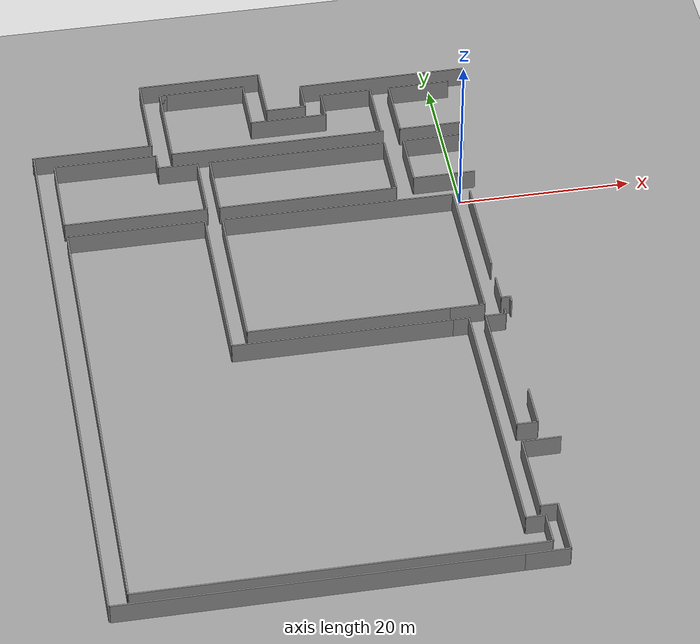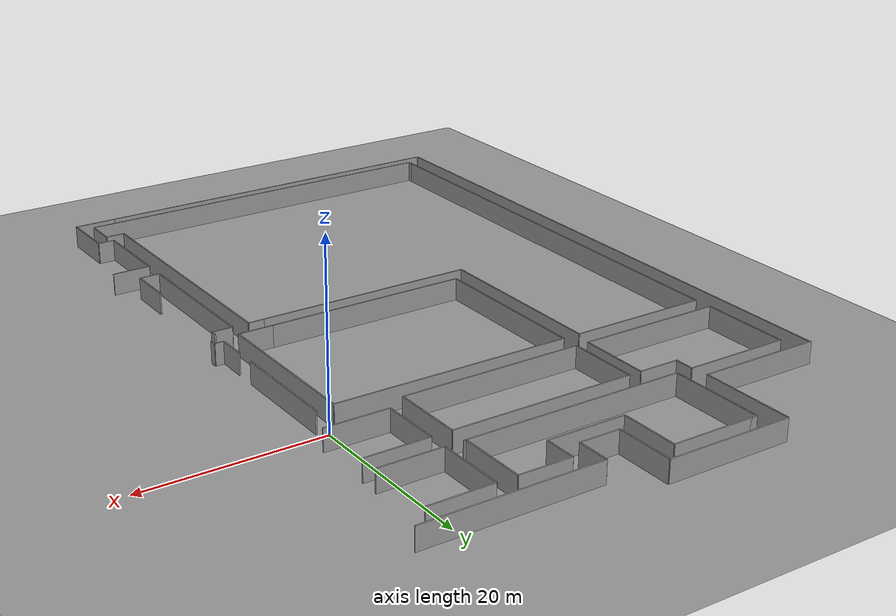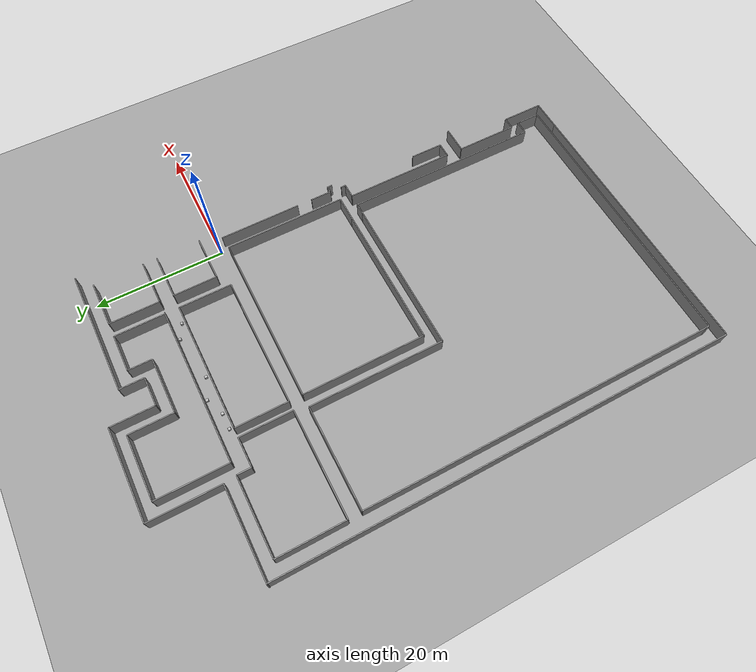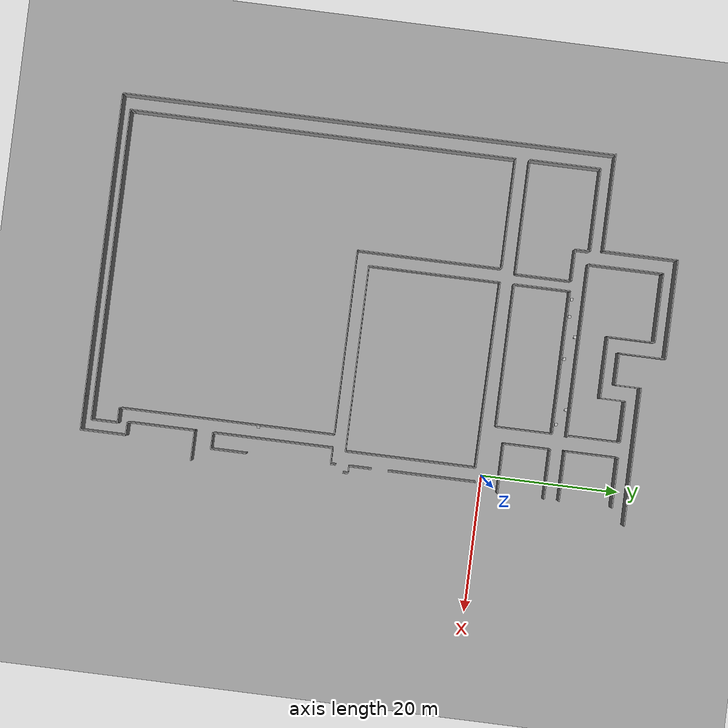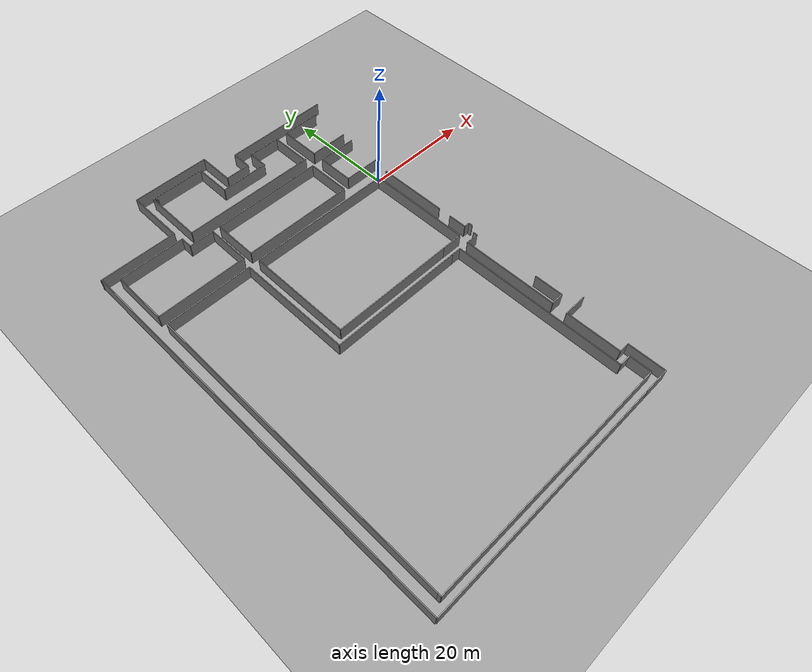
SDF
<sdf version="1.6">
 <world name="default">
  <model name="ground_plane_0">
   <static>1</static>
   <link name="link">
    <collision name="collision">
     <geometry><plane><normal>0 0 1</normal><size>100 100</size></plane></geometry>
     <surface><friction><ode><mu>100</mu><mu2>50</mu2></ode></friction></surface>
    </collision>
    <visual name="visual">
     <cast_shadows>0</cast_shadows>
     <geometry><plane><normal>0 0 1</normal><size>100 100</size></plane></geometry>
     <material>
      <script><uri>file://media/materials/scripts/gazebo.material</uri><name>Gazebo/Grey</name></script>
     </material>
    </visual>
    <velocity_decay><linear>0</linear><angular>0</angular></velocity_decay>
   </link>
   <pose>0.497681 0 0 0 -0 0</pose>
  </model>
  <model name="Wean4Complete">
   <pose>-5 0 0 0 -0 0</pose>
   <static>1</static>
   <link name="Wall_0">
    <collision name="Wall_0_Collision">
     <geometry><box><size>2.162 0.15 2.5</size></box></geometry>
     <pose>0 0 1.25 0 -0 0</pose>
    </collision>
    <visual name="Wall_0_Visual">
     <pose>0 0 1.25 0 -0 0</pose>
     <geometry><box><size>2.162 0.15 2.5</size></box></geometry>
     <material>
      <script><uri>file://media/materials/scripts/gazebo.material</uri><name>Gazebo/Grey</name></script>
      <ambient>1 1 1 1</ambient>
     </material>
    </visual>
    <pose>-29.104 10.27 0 0 0 1.57079632679</pose>
   </link>
   <link name="Wall_1">
    <collision name="Wall_1_Collision">
     <geometry><box><size>8.108 0.15 2.5</size></box></geometry>
     <pose>0 0 1.25 0 -0 0</pose>
    </collision>
    <visual name="Wall_1_Visual">
     <pose>0 0 1.25 0 -0 0</pose>
     <geometry><box><size>8.108 0.15 2.5</size></box></geometry>
     <material>
      <script><uri>file://media/materials/scripts/gazebo.material</uri><name>Gazebo/Grey</name></script>
      <ambient>1 1 1 1</ambient>
     </material>
    </visual>
    <pose>-24.509 5.135 0 0 0 1.57079632679</pose>
   </link>
   <link name="Wall_2">
    <collision name="Wall_2_Collision">
     <geometry><box><size>16.541 0.15 2.5</size></box></geometry>
     <pose>0 0 1.25 0 -0 0</pose>
    </collision>
    <visual name="Wall_2_Visual">
     <pose>0 0 1.25 0 -0 0</pose>
     <geometry><box><size>16.541 0.15 2.5</size></box></geometry>
     <material>
      <script><uri>file://media/materials/scripts/gazebo.material</uri><name>Gazebo/Grey</name></script>
      <ambient>1 1 1 1</ambient>
     </material>
    </visual>
    <pose>-32.7795 1.081 0 0 0 0.0</pose>
   </link>
   <link name="Wall_3">
    <collision name="Wall_3_Collision">
     <geometry><box><size>4.595 0.15 2.5</size></box></geometry>
     <pose>0 0 1.25 0 -0 0</pose>
    </collision>
    <visual name="Wall_3_Visual">
     <pose>0 0 1.25 0 -0 0</pose>
     <geometry><box><size>4.595 0.15 2.5</size></box></geometry>
     <material>
      <script><uri>file://media/materials/scripts/gazebo.material</uri><name>Gazebo/Grey</name></script>
      <ambient>1 1 1 1</ambient>
     </material>
    </visual>
    <pose>-26.8065 9.189 0 0 0 0.0</pose>
   </link>
   <link name="Wall_4">
    <collision name="Wall_4_Collision">
     <geometry><box><size>8.108 0.15 2.5</size></box></geometry>
     <pose>0 0 1.25 0 -0 0</pose>
    </collision>
    <visual name="Wall_4_Visual">
     <pose>0 0 1.25 0 -0 0</pose>
     <geometry><box><size>8.108 0.15 2.5</size></box></geometry>
     <material>
      <script><uri>file://media/materials/scripts/gazebo.material</uri><name>Gazebo/Grey</name></script>
      <ambient>1 1 1 1</ambient>
     </material>
    </visual>
    <pose>-23.05 5.135 0 0 0 1.57079632679</pose>
   </link>
   <link name="Wall_5">
    <collision name="Wall_5_Collision">
     <geometry><box><size>20.703 0.15 2.5</size></box></geometry>
     <pose>0 0 1.25 0 -0 0</pose>
    </collision>
    <visual name="Wall_5_Visual">
     <pose>0 0 1.25 0 -0 0</pose>
     <geometry><box><size>20.703 0.15 2.5</size></box></geometry>
     <material>
      <script><uri>file://media/materials/scripts/gazebo.material</uri><name>Gazebo/Grey</name></script>
      <ambient>1 1 1 1</ambient>
     </material>
    </visual>
    <pose>-12.6985 1.081 0 0 0 0.0</pose>
   </link>
   <link name="Wall_6">
    <collision name="Wall_6_Collision">
     <geometry><box><size>8.108 0.15 2.5</size></box></geometry>
     <pose>0 0 1.25 0 -0 0</pose>
    </collision>
    <visual name="Wall_6_Visual">
     <pose>0 0 1.25 0 -0 0</pose>
     <geometry><box><size>8.108 0.15 2.5</size></box></geometry>
     <material>
      <script><uri>file://media/materials/scripts/gazebo.material</uri><name>Gazebo/Grey</name></script>
      <ambient>1 1 1 1</ambient>
     </material>
    </visual>
    <pose>-2.347 5.135 0 0 0 1.57079632679</pose>
   </link>
   <link name="Wall_7">
    <collision name="Wall_7_Collision">
     <geometry><box><size>20.703 0.15 2.5</size></box></geometry>
     <pose>0 0 1.25 0 -0 0</pose>
    </collision>
    <visual name="Wall_7_Visual">
     <pose>0 0 1.25 0 -0 0</pose>
     <geometry><box><size>20.703 0.15 2.5</size></box></geometry>
     <material>
      <script><uri>file://media/materials/scripts/gazebo.material</uri><name>Gazebo/Grey</name></script>
      <ambient>1 1 1 1</ambient>
     </material>
    </visual>
    <pose>-12.6985 9.189 0 0 0 0.0</pose>
   </link>
   <link name="Wall_8">
    <collision name="Wall_8_Collision">
     <geometry><box><size>25.135 0.15 2.5</size></box></geometry>
     <pose>0 0 1.25 0 -0 0</pose>
    </collision>
    <visual name="Wall_8_Visual">
     <pose>0 0 1.25 0 -0 0</pose>
     <geometry><box><size>25.135 0.15 2.5</size></box></geometry>
     <material>
      <script><uri>file://media/materials/scripts/gazebo.material</uri><name>Gazebo/Grey</name></script>
      <ambient>1 1 1 1</ambient>
     </material>
    </visual>
    <pose>-14.6445 11.351 0 0 0 0.0</pose>
   </link>
   <link name="Wall_9">
    <collision name="Wall_9_Collision">
     <geometry><box><size>7.676 0.15 2.5</size></box></geometry>
     <pose>0 0 1.25 0 -0 0</pose>
    </collision>
    <visual name="Wall_9_Visual">
     <pose>0 0 1.25 0 -0 0</pose>
     <geometry><box><size>7.676 0.15 2.5</size></box></geometry>
     <material>
      <script><uri>file://media/materials/scripts/gazebo.material</uri><name>Gazebo/Grey</name></script>
      <ambient>1 1 1 1</ambient>
     </material>
    </visual>
    <pose>-2.347 15.189 0 0 0 1.57079632679</pose>
   </link>
   <link name="Wall_10">
    <collision name="Wall_10_Collision">
     <geometry><box><size>5.946 0.15 2.5</size></box></geometry>
     <pose>0 0 1.25 0 -0 0</pose>
    </collision>
    <visual name="Wall_10_Visual">
     <pose>0 0 1.25 0 -0 0</pose>
     <geometry><box><size>5.946 0.15 2.5</size></box></geometry>
     <material>
      <script><uri>file://media/materials/scripts/gazebo.material</uri><name>Gazebo/Grey</name></script>
      <ambient>1 1 1 1</ambient>
     </material>
    </visual>
    <pose>-5.32 19.027 0 0 0 0.0</pose>
   </link>
   <link name="Wall_11">
    <collision name="Wall_11_Collision">
     <geometry><box><size>3.622 0.15 2.5</size></box></geometry>
     <pose>0 0 1.25 0 -0 0</pose>
    </collision>
    <visual name="Wall_11_Visual">
     <pose>0 0 1.25 0 -0 0</pose>
     <geometry><box><size>3.622 0.15 2.5</size></box></geometry>
     <material>
      <script><uri>file://media/materials/scripts/gazebo.material</uri><name>Gazebo/Grey</name></script>
      <ambient>1 1 1 1</ambient>
     </material>
    </visual>
    <pose>-8.293 17.216 0 0 0 1.57079632679</pose>
   </link>
   <link name="Wall_12">
    <collision name="Wall_12_Collision">
     <geometry><box><size>8.919 0.15 2.5</size></box></geometry>
     <pose>0 0 1.25 0 -0 0</pose>
    </collision>
    <visual name="Wall_12_Visual">
     <pose>0 0 1.25 0 -0 0</pose>
     <geometry><box><size>8.919 0.15 2.5</size></box></geometry>
     <material>
      <script><uri>file://media/materials/scripts/gazebo.material</uri><name>Gazebo/Grey</name></script>
      <ambient>1 1 1 1</ambient>
     </material>
    </visual>
    <pose>-12.7525 15.405 0 0 0 0.0</pose>
   </link>
   <link name="Wall_13">
    <collision name="Wall_13_Collision">
     <geometry><box><size>6.757 0.15 2.5</size></box></geometry>
     <pose>0 0 1.25 0 -0 0</pose>
    </collision>
    <visual name="Wall_13_Visual">
     <pose>0 0 1.25 0 -0 0</pose>
     <geometry><box><size>6.757 0.15 2.5</size></box></geometry>
     <material>
      <script><uri>file://media/materials/scripts/gazebo.material</uri><name>Gazebo/Grey</name></script>
      <ambient>1 1 1 1</ambient>
     </material>
    </visual>
    <pose>-17.212 18.7835 0 0 0 1.57079632679</pose>
   </link>
   <link name="Wall_14">
    <collision name="Wall_14_Collision">
     <geometry><box><size>9.838 0.15 2.5</size></box></geometry>
     <pose>0 0 1.25 0 -0 0</pose>
    </collision>
    <visual name="Wall_14_Visual">
     <pose>0 0 1.25 0 -0 0</pose>
     <geometry><box><size>9.838 0.15 2.5</size></box></geometry>
     <material>
      <script><uri>file://media/materials/scripts/gazebo.material</uri><name>Gazebo/Grey</name></script>
      <ambient>1 1 1 1</ambient>
     </material>
    </visual>
    <pose>-22.131 22.162 0 0 0 0.0</pose>
   </link>
   <link name="Wall_15">
    <collision name="Wall_15_Collision">
     <geometry><box><size>10.811 0.15 2.5</size></box></geometry>
     <pose>0 0 1.25 0 -0 0</pose>
    </collision>
    <visual name="Wall_15_Visual">
     <pose>0 0 1.25 0 -0 0</pose>
     <geometry><box><size>10.811 0.15 2.5</size></box></geometry>
     <material>
      <script><uri>file://media/materials/scripts/gazebo.material</uri><name>Gazebo/Grey</name></script>
      <ambient>1 1 1 1</ambient>
     </material>
    </visual>
    <pose>-27.212 16.7565 0 0 0 1.57079632679</pose>
   </link>
   <link name="Wall_16">
    <collision name="Wall_16_Collision">
     <geometry><box><size>0.811 0.15 2.5</size></box></geometry>
     <pose>0 0 1.25 0 -0 0</pose>
    </collision>
    <visual name="Wall_16_Visual">
     <pose>0 0 1.25 0 -0 0</pose>
     <geometry><box><size>0.811 0.15 2.5</size></box></geometry>
     <material>
      <script><uri>file://media/materials/scripts/gazebo.material</uri><name>Gazebo/Grey</name></script>
      <ambient>1 1 1 1</ambient>
     </material>
    </visual>
    <pose>-26.8065 22.162 0 0 0 0.0</pose>
   </link>
   <link name="Wall_17">
    <collision name="Wall_17_Collision">
     <geometry><box><size>11.946 0.15 2.5</size></box></geometry>
     <pose>0 0 1.25 0 -0 0</pose>
    </collision>
    <visual name="Wall_17_Visual">
     <pose>0 0 1.25 0 -0 0</pose>
     <geometry><box><size>11.946 0.15 2.5</size></box></geometry>
     <material>
      <script><uri>file://media/materials/scripts/gazebo.material</uri><name>Gazebo/Grey</name></script>
      <ambient>1 1 1 1</ambient>
     </material>
    </visual>
    <pose>-35.077 11.351 0 0 0 0.0</pose>
   </link>
   <link name="Wall_18">
    <collision name="Wall_18_Collision">
     <geometry><box><size>10.27 0.15 2.5</size></box></geometry>
     <pose>0 0 1.25 0 -0 0</pose>
    </collision>
    <visual name="Wall_18_Visual">
     <pose>0 0 1.25 0 -0 0</pose>
     <geometry><box><size>10.27 0.15 2.5</size></box></geometry>
     <material>
      <script><uri>file://media/materials/scripts/gazebo.material</uri><name>Gazebo/Grey</name></script>
      <ambient>1 1 1 1</ambient>
     </material>
    </visual>
    <pose>-41.05 6.216 0 0 0 1.57079632679</pose>
   </link>
   <link name="Wall_19">
    <collision name="Wall_19_Collision">
     <geometry><box><size>10.757 0.15 2.5</size></box></geometry>
     <pose>0 0 1.25 0 -0 0</pose>
    </collision>
    <visual name="Wall_19_Visual">
     <pose>0 0 1.25 0 -0 0</pose>
     <geometry><box><size>10.757 0.15 2.5</size></box></geometry>
     <material>
      <script><uri>file://media/materials/scripts/gazebo.material</uri><name>Gazebo/Grey</name></script>
      <ambient>1 1 1 1</ambient>
     </material>
    </visual>
    <pose>-29.374 18.6215 0 0 0 1.57079632679</pose>
   </link>
   <link name="Wall_20">
    <collision name="Wall_20_Collision">
     <geometry><box><size>14.324 0.15 2.5</size></box></geometry>
     <pose>0 0 1.25 0 -0 0</pose>
    </collision>
    <visual name="Wall_20_Visual">
     <pose>0 0 1.25 0 -0 0</pose>
     <geometry><box><size>14.324 0.15 2.5</size></box></geometry>
     <material>
      <script><uri>file://media/materials/scripts/gazebo.material</uri><name>Gazebo/Grey</name></script>
      <ambient>1 1 1 1</ambient>
     </material>
    </visual>
    <pose>-22.212 24.0 0 0 0 0.0</pose>
   </link>
   <link name="Wall_21">
    <collision name="Wall_21_Collision">
     <geometry><box><size>6.703 0.15 2.5</size></box></geometry>
     <pose>0 0 1.25 0 -0 0</pose>
    </collision>
    <visual name="Wall_21_Visual">
     <pose>0 0 1.25 0 -0 0</pose>
     <geometry><box><size>6.703 0.15 2.5</size></box></geometry>
     <material>
      <script><uri>file://media/materials/scripts/gazebo.material</uri><name>Gazebo/Grey</name></script>
      <ambient>1 1 1 1</ambient>
     </material>
    </visual>
    <pose>-15.05 20.6485 0 0 0 1.57079632679</pose>
   </link>
   <link name="Wall_22">
    <collision name="Wall_22_Collision">
     <geometry><box><size>4.595 0.15 2.5</size></box></geometry>
     <pose>0 0 1.25 0 -0 0</pose>
    </collision>
    <visual name="Wall_22_Visual">
     <pose>0 0 1.25 0 -0 0</pose>
     <geometry><box><size>4.595 0.15 2.5</size></box></geometry>
     <material>
      <script><uri>file://media/materials/scripts/gazebo.material</uri><name>Gazebo/Grey</name></script>
      <ambient>1 1 1 1</ambient>
     </material>
    </visual>
    <pose>-12.7525 17.297 0 0 0 0.0</pose>
   </link>
   <link name="Wall_23">
    <collision name="Wall_23_Collision">
     <geometry><box><size>3.73 0.15 2.5</size></box></geometry>
     <pose>0 0 1.25 0 -0 0</pose>
    </collision>
    <visual name="Wall_23_Visual">
     <pose>0 0 1.25 0 -0 0</pose>
     <geometry><box><size>3.73 0.15 2.5</size></box></geometry>
     <material>
      <script><uri>file://media/materials/scripts/gazebo.material</uri><name>Gazebo/Grey</name></script>
      <ambient>1 1 1 1</ambient>
     </material>
    </visual>
    <pose>-10.455 19.162 0 0 0 1.57079632679</pose>
   </link>
   <link name="Wall_24">
    <collision name="Wall_24_Collision">
     <geometry><box><size>20.0000728999 0.15 2.5</size></box></geometry>
     <pose>0 0 1.25 0 -0 0</pose>
    </collision>
    <visual name="Wall_24_Visual">
     <pose>0 0 1.25 0 -0 0</pose>
     <geometry><box><size>20.0000728999 0.15 2.5</size></box></geometry>
     <material>
      <script><uri>file://media/materials/scripts/gazebo.material</uri><name>Gazebo/Grey</name></script>
      <ambient>1 1 1 1</ambient>
     </material>
    </visual>
    <pose>-0.455 21.054 0 0 0 0.00269999343903</pose>
   </link>
   <link name="Wall_25">
    <collision name="Wall_25_Collision">
     <geometry><box><size>7.676 0.15 2.5</size></box></geometry>
     <pose>0 0 1.25 0 -0 0</pose>
    </collision>
    <visual name="Wall_25_Visual">
     <pose>0 0 1.25 0 -0 0</pose>
     <geometry><box><size>7.676 0.15 2.5</size></box></geometry>
     <material>
      <script><uri>file://media/materials/scripts/gazebo.material</uri><name>Gazebo/Grey</name></script>
      <ambient>1 1 1 1</ambient>
     </material>
    </visual>
    <pose>-0.077 15.189 0 0 0 1.57079632679</pose>
   </link>
   <link name="Wall_26">
    <collision name="Wall_26_Collision">
     <geometry><box><size>7.243 0.15 2.5</size></box></geometry>
     <pose>0 0 1.25 0 -0 0</pose>
    </collision>
    <visual name="Wall_26_Visual">
     <pose>0 0 1.25 0 -0 0</pose>
     <geometry><box><size>7.243 0.15 2.5</size></box></geometry>
     <material>
      <script><uri>file://media/materials/scripts/gazebo.material</uri><name>Gazebo/Grey</name></script>
      <ambient>1 1 1 1</ambient>
     </material>
    </visual>
    <pose>3.5445 11.351 0 0 0 0.0</pose>
   </link>
   <link name="Wall_28">
    <collision name="Wall_28_Collision">
     <geometry><box><size>7.243 0.15 2.5</size></box></geometry>
     <pose>0 0 1.25 0 -0 0</pose>
    </collision>
    <visual name="Wall_28_Visual">
     <pose>0 0 1.25 0 -0 0</pose>
     <geometry><box><size>7.243 0.15 2.5</size></box></geometry>
     <material>
      <script><uri>file://media/materials/scripts/gazebo.material</uri><name>Gazebo/Grey</name></script>
      <ambient>1 1 1 1</ambient>
     </material>
    </visual>
    <pose>3.5445 19.027 0 0 0 0.0</pose>
   </link>
   <link name="Wall_87">
    <collision name="Wall_87_Collision">
     <geometry><box><size>14.054 0.15 2.5</size></box></geometry>
     <pose>0 0 1.25 0 -0 0</pose>
    </collision>
    <visual name="Wall_87_Visual">
     <pose>0 0 1.25 0 -0 0</pose>
     <geometry><box><size>14.054 0.15 2.5</size></box></geometry>
     <material>
      <script><uri>file://media/materials/scripts/gazebo.material</uri><name>Gazebo/Grey</name></script>
      <ambient>1 1 1 1</ambient>
     </material>
    </visual>
    <pose>-36.401 13.243 0 0 0 0.0</pose>
   </link>
   <link name="Wall_88">
    <collision name="Wall_88_Collision">
     <geometry><box><size>18.865 0.15 2.5</size></box></geometry>
     <pose>0 0 1.25 0 -0 0</pose>
    </collision>
    <visual name="Wall_88_Visual">
     <pose>0 0 1.25 0 -0 0</pose>
     <geometry><box><size>18.865 0.15 2.5</size></box></geometry>
     <material>
      <script><uri>file://media/materials/scripts/gazebo.material</uri><name>Gazebo/Grey</name></script>
      <ambient>1 1 1 1</ambient>
     </material>
    </visual>
    <pose>3.869 -10.5675 0 0 0 1.57079632679</pose>
   </link>
   <link name="Wall_89">
    <collision name="Wall_89_Collision">
     <geometry><box><size>26.919487458 0.15 2.5</size></box></geometry>
     <pose>0 0 1.25 0 -0 0</pose>
    </collision>
    <visual name="Wall_89_Visual">
     <pose>0 0 1.25 0 -0 0</pose>
     <geometry><box><size>26.919487458 0.15 2.5</size></box></geometry>
     <material>
      <script><uri>file://media/materials/scripts/gazebo.material</uri><name>Gazebo/Grey</name></script>
      <ambient>1 1 1 1</ambient>
     </material>
    </visual>
    <pose>-9.5905 -1.054 0 0 0 -0.00601798151216</pose>
   </link>
   <link name="Wall_90">
    <collision name="Wall_90_Collision">
     <geometry><box><size>15.892 0.15 2.5</size></box></geometry>
     <pose>0 0 1.25 0 -0 0</pose>
    </collision>
    <visual name="Wall_90_Visual">
     <pose>0 0 1.25 0 -0 0</pose>
     <geometry><box><size>15.892 0.15 2.5</size></box></geometry>
     <material>
      <script><uri>file://media/materials/scripts/gazebo.material</uri><name>Gazebo/Grey</name></script>
      <ambient>1 1 1 1</ambient>
     </material>
    </visual>
    <pose>-32.996 -0.973 0 0 0 0.0</pose>
   </link>
   <link name="Wall_91">
    <collision name="Wall_91_Collision">
     <geometry><box><size>3.946 0.15 2.5</size></box></geometry>
     <pose>0 0 1.25 0 -0 0</pose>
    </collision>
    <visual name="Wall_91_Visual">
     <pose>0 0 1.25 0 -0 0</pose>
     <geometry><box><size>3.946 0.15 2.5</size></box></geometry>
     <material>
      <script><uri>file://media/materials/scripts/gazebo.material</uri><name>Gazebo/Grey</name></script>
      <ambient>1 1 1 1</ambient>
     </material>
    </visual>
    <pose>1.896 -20.0 0 0 0 0.0</pose>
   </link>
   <link name="Wall_92">
    <collision name="Wall_92_Collision">
     <geometry><box><size>1.784 0.15 2.5</size></box></geometry>
     <pose>0 0 1.25 0 -0 0</pose>
    </collision>
    <visual name="Wall_92_Visual">
     <pose>0 0 1.25 0 -0 0</pose>
     <geometry><box><size>1.784 0.15 2.5</size></box></geometry>
     <material>
      <script><uri>file://media/materials/scripts/gazebo.material</uri><name>Gazebo/Grey</name></script>
      <ambient>1 1 1 1</ambient>
     </material>
    </visual>
    <pose>0.815 -21.892 0 0 0 0.0</pose>
   </link>
   <link name="Wall_93">
    <collision name="Wall_93_Collision">
     <geometry><box><size>31.135 0.15 2.5</size></box></geometry>
     <pose>0 0 1.25 0 -0 0</pose>
    </collision>
    <visual name="Wall_93_Visual">
     <pose>0 0 1.25 0 -0 0</pose>
     <geometry><box><size>31.135 0.15 2.5</size></box></geometry>
     <material>
      <script><uri>file://media/materials/scripts/gazebo.material</uri><name>Gazebo/Grey</name></script>
      <ambient>1 1 1 1</ambient>
     </material>
    </visual>
    <pose>1.707 -37.4595 0 0 0 1.57079632679</pose>
   </link>
   <link name="Wall_94">
    <collision name="Wall_94_Collision">
     <geometry><box><size>2.162 0.15 2.5</size></box></geometry>
     <pose>0 0 1.25 0 -0 0</pose>
    </collision>
    <visual name="Wall_94_Visual">
     <pose>0 0 1.25 0 -0 0</pose>
     <geometry><box><size>2.162 0.15 2.5</size></box></geometry>
     <material>
      <script><uri>file://media/materials/scripts/gazebo.material</uri><name>Gazebo/Grey</name></script>
      <ambient>1 1 1 1</ambient>
     </material>
    </visual>
    <pose>2.788 -53.027 0 0 0 0.0</pose>
   </link>
   <link name="Wall_95">
    <collision name="Wall_95_Collision">
     <geometry><box><size>3.73 0.15 2.5</size></box></geometry>
     <pose>0 0 1.25 0 -0 0</pose>
    </collision>
    <visual name="Wall_95_Visual">
     <pose>0 0 1.25 0 -0 0</pose>
     <geometry><box><size>3.73 0.15 2.5</size></box></geometry>
     <material>
      <script><uri>file://media/materials/scripts/gazebo.material</uri><name>Gazebo/Grey</name></script>
      <ambient>1 1 1 1</ambient>
     </material>
    </visual>
    <pose>3.869 -54.892 0 0 0 1.57079632679</pose>
   </link>
   <link name="Wall_96">
    <collision name="Wall_96_Collision">
     <geometry><box><size>4.865 0.15 2.5</size></box></geometry>
     <pose>0 0 1.25 0 -0 0</pose>
    </collision>
    <visual name="Wall_96_Visual">
     <pose>0 0 1.25 0 -0 0</pose>
     <geometry><box><size>4.865 0.15 2.5</size></box></geometry>
     <material>
      <script><uri>file://media/materials/scripts/gazebo.material</uri><name>Gazebo/Grey</name></script>
      <ambient>1 1 1 1</ambient>
     </material>
    </visual>
    <pose>3.0585 -58.162 0 0 0 0.0</pose>
   </link>
   <link name="Wall_97">
    <collision name="Wall_97_Collision">
     <geometry><box><size>6.54 0.15 2.5</size></box></geometry>
     <pose>0 0 1.25 0 -0 0</pose>
    </collision>
    <visual name="Wall_97_Visual">
     <pose>0 0 1.25 0 -0 0</pose>
     <geometry><box><size>6.54 0.15 2.5</size></box></geometry>
     <material>
      <script><uri>file://media/materials/scripts/gazebo.material</uri><name>Gazebo/Grey</name></script>
      <ambient>1 1 1 1</ambient>
     </material>
    </visual>
    <pose>5.491 -54.892 0 0 0 1.57079632679</pose>
   </link>
   <link name="Wall_98">
    <collision name="Wall_98_Collision">
     <geometry><box><size>1.892 0.15 2.5</size></box></geometry>
     <pose>0 0 1.25 0 -0 0</pose>
    </collision>
    <visual name="Wall_98_Visual">
     <pose>0 0 1.25 0 -0 0</pose>
     <geometry><box><size>1.892 0.15 2.5</size></box></geometry>
     <material>
      <script><uri>file://media/materials/scripts/gazebo.material</uri><name>Gazebo/Grey</name></script>
      <ambient>1 1 1 1</ambient>
     </material>
    </visual>
    <pose>4.545 -51.622 0 0 0 0.0</pose>
   </link>
   <link name="Wall_99">
    <collision name="Wall_99_Collision">
     <geometry><box><size>9.73 0.15 2.5</size></box></geometry>
     <pose>0 0 1.25 0 -0 0</pose>
    </collision>
    <visual name="Wall_99_Visual">
     <pose>0 0 1.25 0 -0 0</pose>
     <geometry><box><size>9.73 0.15 2.5</size></box></geometry>
     <material>
      <script><uri>file://media/materials/scripts/gazebo.material</uri><name>Gazebo/Grey</name></script>
      <ambient>1 1 1 1</ambient>
     </material>
    </visual>
    <pose>3.599 -46.757 0 0 0 1.57079632679</pose>
   </link>
   <link name="Wall_100">
    <collision name="Wall_100_Collision">
     <geometry><box><size>4.324 0.15 2.5</size></box></geometry>
     <pose>0 0 1.25 0 -0 0</pose>
    </collision>
    <visual name="Wall_100_Visual">
     <pose>0 0 1.25 0 -0 0</pose>
     <geometry><box><size>4.324 0.15 2.5</size></box></geometry>
     <material>
      <script><uri>file://media/materials/scripts/gazebo.material</uri><name>Gazebo/Grey</name></script>
      <ambient>1 1 1 1</ambient>
     </material>
    </visual>
    <pose>5.761 -41.892 0 0 0 0.0</pose>
   </link>
   <link name="Wall_105">
    <collision name="Wall_105_Collision">
     <geometry><box><size>0.757 0.15 2.5</size></box></geometry>
     <pose>0 0 1.25 0 -0 0</pose>
    </collision>
    <visual name="Wall_105_Visual">
     <pose>0 0 1.25 0 -0 0</pose>
     <geometry><box><size>0.757 0.15 2.5</size></box></geometry>
     <material>
      <script><uri>file://media/materials/scripts/gazebo.material</uri><name>Gazebo/Grey</name></script>
      <ambient>1 1 1 1</ambient>
     </material>
    </visual>
    <pose>6.95 -19.6215 0 0 0 1.57079632679</pose>
   </link>
   <link name="Wall_106">
    <collision name="Wall_106_Collision">
     <geometry><box><size>1.027 0.15 2.5</size></box></geometry>
     <pose>0 0 1.25 0 -0 0</pose>
    </collision>
    <visual name="Wall_106_Visual">
     <pose>0 0 1.25 0 -0 0</pose>
     <geometry><box><size>1.027 0.15 2.5</size></box></geometry>
     <material>
      <script><uri>file://media/materials/scripts/gazebo.material</uri><name>Gazebo/Grey</name></script>
      <ambient>1 1 1 1</ambient>
     </material>
    </visual>
    <pose>6.4365 -19.243 0 0 0 0.0</pose>
   </link>
   <link name="Wall_107">
    <collision name="Wall_107_Collision">
     <geometry><box><size>3.297 0.15 2.5</size></box></geometry>
     <pose>0 0 1.25 0 -0 0</pose>
    </collision>
    <visual name="Wall_107_Visual">
     <pose>0 0 1.25 0 -0 0</pose>
     <geometry><box><size>3.297 0.15 2.5</size></box></geometry>
     <material>
      <script><uri>file://media/materials/scripts/gazebo.material</uri><name>Gazebo/Grey</name></script>
      <ambient>1 1 1 1</ambient>
     </material>
    </visual>
    <pose>5.923 -17.5945 0 0 0 1.57079632679</pose>
   </link>
   <link name="Wall_108">
    <collision name="Wall_108_Collision">
     <geometry><box><size>0.757 0.15 2.5</size></box></geometry>
     <pose>0 0 1.25 0 -0 0</pose>
    </collision>
    <visual name="Wall_108_Visual">
     <pose>0 0 1.25 0 -0 0</pose>
     <geometry><box><size>0.757 0.15 2.5</size></box></geometry>
     <material>
      <script><uri>file://media/materials/scripts/gazebo.material</uri><name>Gazebo/Grey</name></script>
      <ambient>1 1 1 1</ambient>
     </material>
    </visual>
    <pose>5.923 -21.5135 0 0 0 1.57079632679</pose>
   </link>
   <link name="Wall_109">
    <collision name="Wall_109_Collision">
     <geometry><box><size>2.324 0.15 2.5</size></box></geometry>
     <pose>0 0 1.25 0 -0 0</pose>
    </collision>
    <visual name="Wall_109_Visual">
     <pose>0 0 1.25 0 -0 0</pose>
     <geometry><box><size>2.324 0.15 2.5</size></box></geometry>
     <material>
      <script><uri>file://media/materials/scripts/gazebo.material</uri><name>Gazebo/Grey</name></script>
      <ambient>1 1 1 1</ambient>
     </material>
    </visual>
    <pose>4.761 -21.892 0 0 0 0.0</pose>
   </link>
   <link name="Wall_110">
    <collision name="Wall_110_Collision">
     <geometry><box><size>17.351 0.15 2.5</size></box></geometry>
     <pose>0 0 1.25 0 -0 0</pose>
    </collision>
    <visual name="Wall_110_Visual">
     <pose>0 0 1.25 0 -0 0</pose>
     <geometry><box><size>17.351 0.15 2.5</size></box></geometry>
     <material>
      <script><uri>file://media/materials/scripts/gazebo.material</uri><name>Gazebo/Grey</name></script>
      <ambient>1 1 1 1</ambient>
     </material>
    </visual>
    <pose>3.599 -30.5675 0 0 0 1.57079632679</pose>
   </link>
   <link name="Wall_111">
    <collision name="Wall_111_Collision">
     <geometry><box><size>2.324 0.15 2.5</size></box></geometry>
     <pose>0 0 1.25 0 -0 0</pose>
    </collision>
    <visual name="Wall_111_Visual">
     <pose>0 0 1.25 0 -0 0</pose>
     <geometry><box><size>2.324 0.15 2.5</size></box></geometry>
     <material>
      <script><uri>file://media/materials/scripts/gazebo.material</uri><name>Gazebo/Grey</name></script>
      <ambient>1 1 1 1</ambient>
     </material>
    </visual>
    <pose>4.761 -39.243 0 0 0 0.0</pose>
   </link>
   <link name="Wall_112">
    <collision name="Wall_112_Collision">
     <geometry><box><size>5.135 0.15 2.5</size></box></geometry>
     <pose>0 0 1.25 0 -0 0</pose>
    </collision>
    <visual name="Wall_112_Visual">
     <pose>0 0 1.25 0 -0 0</pose>
     <geometry><box><size>5.135 0.15 2.5</size></box></geometry>
     <material>
      <script><uri>file://media/materials/scripts/gazebo.material</uri><name>Gazebo/Grey</name></script>
      <ambient>1 1 1 1</ambient>
     </material>
    </visual>
    <pose>5.923 -36.6755 0 0 0 1.57079632679</pose>
   </link>
   <link name="Wall_116">
    <collision name="Wall_116_Collision">
     <geometry><box><size>43.784 0.15 2.5</size></box></geometry>
     <pose>0 0 1.25 0 -0 0</pose>
    </collision>
    <visual name="Wall_116_Visual">
     <pose>0 0 1.25 0 -0 0</pose>
     <geometry><box><size>43.784 0.15 2.5</size></box></geometry>
     <material>
      <script><uri>file://media/materials/scripts/gazebo.material</uri><name>Gazebo/Grey</name></script>
      <ambient>1 1 1 1</ambient>
     </material>
    </visual>
    <pose>-21.266 -58.162 0 0 0 0.0</pose>
   </link>
   <link name="Wall_117">
    <collision name="Wall_117_Collision">
     <geometry><box><size>55.2971054667 0.15 2.5</size></box></geometry>
     <pose>0 0 1.25 0 -0 0</pose>
    </collision>
    <visual name="Wall_117_Visual">
     <pose>0 0 1.25 0 -0 0</pose>
     <geometry><box><size>55.2971054667 0.15 2.5</size></box></geometry>
     <material>
      <script><uri>file://media/materials/scripts/gazebo.material</uri><name>Gazebo/Grey</name></script>
      <ambient>1 1 1 1</ambient>
     </material>
    </visual>
    <pose>-40.996 -28.6215 0 0 0 1.5688432396</pose>
   </link>
   <link name="Wall_118">
    <collision name="Wall_118_Collision">
     <geometry><box><size>22.973 0.15 2.5</size></box></geometry>
     <pose>0 0 1.25 0 -0 0</pose>
    </collision>
    <visual name="Wall_118_Visual">
     <pose>0 0 1.25 0 -0 0</pose>
     <geometry><box><size>22.973 0.15 2.5</size></box></geometry>
     <material>
      <script><uri>file://media/materials/scripts/gazebo.material</uri><name>Gazebo/Grey</name></script>
      <ambient>1 1 1 1</ambient>
     </material>
    </visual>
    <pose>-11.5635 -20.0 0 0 0 0.0</pose>
   </link>
   <link name="Wall_119">
    <collision name="Wall_119_Collision">
     <geometry><box><size>19.027 0.15 2.5</size></box></geometry>
     <pose>0 0 1.25 0 -0 0</pose>
    </collision>
    <visual name="Wall_119_Visual">
     <pose>0 0 1.25 0 -0 0</pose>
     <geometry><box><size>19.027 0.15 2.5</size></box></geometry>
     <material>
      <script><uri>file://media/materials/scripts/gazebo.material</uri><name>Gazebo/Grey</name></script>
      <ambient>1 1 1 1</ambient>
     </material>
    </visual>
    <pose>-23.05 -10.4865 0 0 0 1.57079632679</pose>
   </link>
   <link name="Wall_120">
    <collision name="Wall_120_Collision">
     <geometry><box><size>24.973 0.15 2.5</size></box></geometry>
     <pose>0 0 1.25 0 -0 0</pose>
    </collision>
    <visual name="Wall_120_Visual">
     <pose>0 0 1.25 0 -0 0</pose>
     <geometry><box><size>24.973 0.15 2.5</size></box></geometry>
     <material>
      <script><uri>file://media/materials/scripts/gazebo.material</uri><name>Gazebo/Grey</name></script>
      <ambient>1 1 1 1</ambient>
     </material>
    </visual>
    <pose>-12.5635 -21.892 0 0 0 0.0</pose>
   </link>
   <link name="Wall_121">
    <collision name="Wall_121_Collision">
     <geometry><box><size>20.919 0.15 2.5</size></box></geometry>
     <pose>0 0 1.25 0 -0 0</pose>
    </collision>
    <visual name="Wall_121_Visual">
     <pose>0 0 1.25 0 -0 0</pose>
     <geometry><box><size>20.919 0.15 2.5</size></box></geometry>
     <material>
      <script><uri>file://media/materials/scripts/gazebo.material</uri><name>Gazebo/Grey</name></script>
      <ambient>1 1 1 1</ambient>
     </material>
    </visual>
    <pose>-25.05 -11.4325 0 0 0 1.57079632679</pose>
   </link>
   <link name="Wall_122">
    <collision name="Wall_122_Collision">
     <geometry><box><size>6.757 0.15 2.5</size></box></geometry>
     <pose>0 0 1.25 0 -0 0</pose>
    </collision>
    <visual name="Wall_122_Visual">
     <pose>0 0 1.25 0 -0 0</pose>
     <geometry><box><size>6.757 0.15 2.5</size></box></geometry>
     <material>
      <script><uri>file://media/materials/scripts/gazebo.material</uri><name>Gazebo/Grey</name></script>
      <ambient>1 1 1 1</ambient>
     </material>
    </visual>
    <pose>-0.077 5.8105 0 0 0 1.57079632679</pose>
   </link>
   <link name="Wall_123">
    <collision name="Wall_123_Collision">
     <geometry><box><size>7.243 0.15 2.5</size></box></geometry>
     <pose>0 0 1.25 0 -0 0</pose>
    </collision>
    <visual name="Wall_123_Visual">
     <pose>0 0 1.25 0 -0 0</pose>
     <geometry><box><size>7.243 0.15 2.5</size></box></geometry>
     <material>
      <script><uri>file://media/materials/scripts/gazebo.material</uri><name>Gazebo/Grey</name></script>
      <ambient>1 1 1 1</ambient>
     </material>
    </visual>
    <pose>3.5445 2.432 0 0 0 0.0</pose>
   </link>
   <link name="Wall_125">
    <collision name="Wall_125_Collision">
     <geometry><box><size>7.243 0.15 2.5</size></box></geometry>
     <pose>0 0 1.25 0 -0 0</pose>
    </collision>
    <visual name="Wall_125_Visual">
     <pose>0 0 1.25 0 -0 0</pose>
     <geometry><box><size>7.243 0.15 2.5</size></box></geometry>
     <material>
      <script><uri>file://media/materials/scripts/gazebo.material</uri><name>Gazebo/Grey</name></script>
      <ambient>1 1 1 1</ambient>
     </material>
    </visual>
    <pose>3.5445 9.189 0 0 0 0.0</pose>
   </link>
   <link name="Wall_126">
    <collision name="Wall_126_Collision">
     <geometry><box><size>12.703 0.15 2.5</size></box></geometry>
     <pose>0 0 1.25 0 -0 0</pose>
    </collision>
    <visual name="Wall_126_Visual">
     <pose>0 0 1.25 0 -0 0</pose>
     <geometry><box><size>12.703 0.15 2.5</size></box></geometry>
     <material>
      <script><uri>file://media/materials/scripts/gazebo.material</uri><name>Gazebo/Grey</name></script>
      <ambient>1 1 1 1</ambient>
     </material>
    </visual>
    <pose>5.923 -7.2165 0 0 0 1.57079632679</pose>
   </link>
   <link name="Wall_128">
    <collision name="Wall_128_Collision">
     <geometry><box><size>71.297 0.15 2.5</size></box></geometry>
     <pose>0 0 1.25 0 -0 0</pose>
    </collision>
    <visual name="Wall_128_Visual">
     <pose>0 0 1.25 0 -0 0</pose>
     <geometry><box><size>71.297 0.15 2.5</size></box></geometry>
     <material>
      <script><uri>file://media/materials/scripts/gazebo.material</uri><name>Gazebo/Grey</name></script>
      <ambient>1 1 1 1</ambient>
     </material>
    </visual>
    <pose>-43.266 -22.4595 0 0 0 1.57079632679</pose>
   </link>
   <link name="Wall_129">
    <collision name="Wall_129_Collision">
     <geometry><box><size>44.865 0.15 2.5</size></box></geometry>
     <pose>0 0 1.25 0 -0 0</pose>
    </collision>
    <visual name="Wall_129_Visual">
     <pose>0 0 1.25 0 -0 0</pose>
     <geometry><box><size>44.865 0.15 2.5</size></box></geometry>
     <material>
      <script><uri>file://media/materials/scripts/gazebo.material</uri><name>Gazebo/Grey</name></script>
      <ambient>1 1 1 1</ambient>
     </material>
    </visual>
    <pose>-18.6175 -56.811 0 0 0 0.0</pose>
   </link>
   <link name="Wall_130">
    <collision name="Wall_130_Collision">
     <geometry><box><size>0.541 0.15 2.5</size></box></geometry>
     <pose>0 0 1.25 0 -0 0</pose>
    </collision>
    <visual name="Wall_130_Visual">
     <pose>0 0 1.25 0 -0 0</pose>
     <geometry><box><size>0.541 0.15 2.5</size></box></geometry>
     <material>
      <script><uri>file://media/materials/scripts/gazebo.material</uri><name>Gazebo/Grey</name></script>
      <ambient>1 1 1 1</ambient>
     </material>
    </visual>
    <pose>-41.05 -56.5405 0 0 0 1.57079632679</pose>
   </link>
  </model>
  <model name="Obstacle_0">
   <static>1</static>
   <link name="link">
    <collision name="collision"><geometry><box><size>0.4 0.4 0.4</size></box></geometry></collision>
    <visual name="visual">
     <geometry><box><size>0.4 0.4 0.4</size></box></geometry>
     <material>
      <script>
       <name>obstacle/box</name>
       <uri>file:////home/vagrant/catkin_ws/src/cp3_base/models/media/materials/scripts/cp3.material</uri>
      </script>
     </material>
    </visual>
   </link>
   <pose>-18.3 9.85 0.2 0 0 0</pose>
  </model>
  <model name="Obstacle_1">
   <static>1</static>
   <link name="link">
    <collision name="collision"><geometry><box><size>0.4 0.4 0.4</size></box></geometry></collision>
    <visual name="visual">
     <geometry><box><size>0.4 0.4 0.4</size></box></geometry>
     <material>
      <script>
       <name>obstacle/box</name>
       <uri>file:////home/vagrant/catkin_ws/src/cp3_base/models/media/materials/scripts/cp3.material</uri>
      </script>
     </material>
    </visual>
   </link>
   <pose>-21.65 11.0 0.2 0 0 0</pose>
  </model>
  <model name="Obstacle_2">
   <static>1</static>
   <link name="link">
    <collision name="collision"><geometry><box><size>0.4 0.4 0.4</size></box></geometry></collision>
    <visual name="visual">
     <geometry><box><size>0.4 0.4 0.4</size></box></geometry>
     <material>
      <script>
       <name>obstacle/box</name>
       <uri>file:////home/vagrant/catkin_ws/src/cp3_base/models/media/materials/scripts/cp3.material</uri>
      </script>
     </material>
    </visual>
   </link>
   <pose>-24.5 9.85 0.2 0 0 0</pose>
  </model>
  <model name="Obstacle_3">
   <static>1</static>
   <link name="link">
    <collision name="collision"><geometry><box><size>0.4 0.4 0.4</size></box></geometry></collision>
    <visual name="visual">
     <geometry><box><size>0.4 0.4 0.4</size></box></geometry>
     <material>
      <script>
       <name>obstacle/box</name>
       <uri>file:////home/vagrant/catkin_ws/src/cp3_base/models/media/materials/scripts/cp3.material</uri>
      </script>
     </material>
    </visual>
   </link>
   <pose>-27 9.85 0.2 0 0 0</pose>
  </model>
  <model name="Obstacle_4">
   <static>1</static>
   <link name="link">
    <collision name="collision"><geometry><box><size>0.4 0.4 0.4</size></box></geometry></collision>
    <visual name="visual">
     <geometry><box><size>0.4 0.4 0.4</size></box></geometry>
     <material>
      <script>
       <name>obstacle/box</name>
       <uri>file:////home/vagrant/catkin_ws/src/cp3_base/models/media/materials/scripts/cp3.material</uri>
      </script>
     </material>
    </visual>
   </link>
   <pose>-11 11 0.2 0 0 0</pose>
  </model>
  <model name="Obstacle_5">
   <static>1</static>
   <link name="link">
    <collision name="collision"><geometry><box><size>0.4 0.4 0.4</size></box></geometry></collision>
    <visual name="visual">
     <geometry><box><size>0.4 0.4 0.4</size></box></geometry>
     <material>
      <script>
       <name>obstacle/box</name>
       <uri>file:////home/vagrant/catkin_ws/src/cp3_base/models/media/materials/scripts/cp3.material</uri>
      </script>
     </material>
    </visual>
   </link>
   <pose>-8.7 9.85 0.2 0 0 0</pose>
  </model>
  <model name="Obstacle_10">
   <static>1</static>
   <link name="link">
    <collision name="collision"><geometry><box><size>0.4 0.4 0.4</size></box></geometry></collision>
    <visual name="visual">
     <geometry><box><size>0.4 0.4 0.4</size></box></geometry>
     <material>
      <script>
       <name>obstacle/box</name>
       <uri>file:////home/vagrant/catkin_ws/src/cp3_base/models/media/materials/scripts/cp3.material</uri>
      </script>
     </material>
    </visual>
   </link>
   <pose>-3 -33.0 0.2 0 0 0</pose>
  </model>
 </world>
</sdf>
